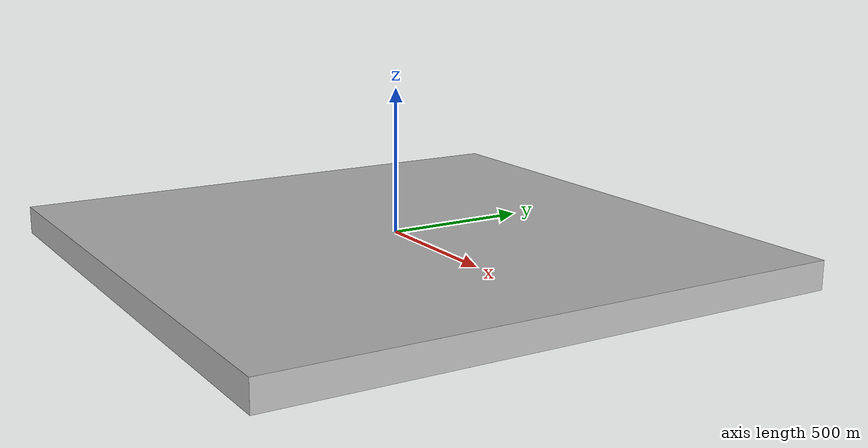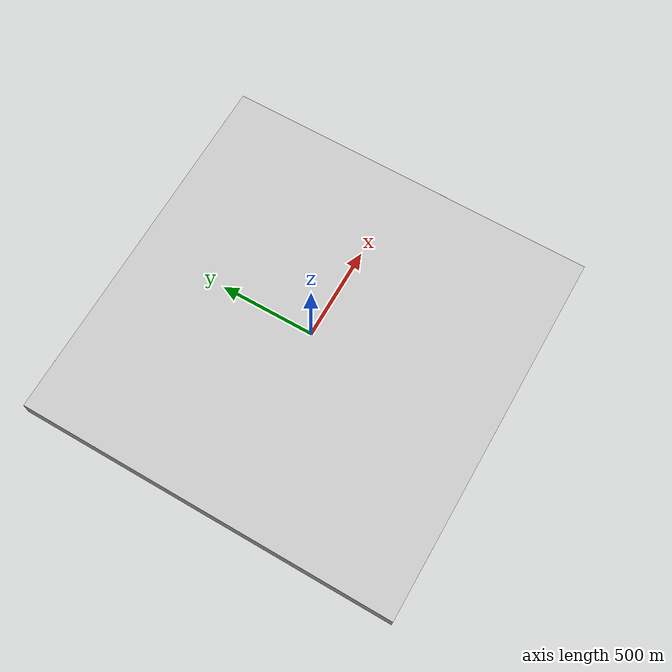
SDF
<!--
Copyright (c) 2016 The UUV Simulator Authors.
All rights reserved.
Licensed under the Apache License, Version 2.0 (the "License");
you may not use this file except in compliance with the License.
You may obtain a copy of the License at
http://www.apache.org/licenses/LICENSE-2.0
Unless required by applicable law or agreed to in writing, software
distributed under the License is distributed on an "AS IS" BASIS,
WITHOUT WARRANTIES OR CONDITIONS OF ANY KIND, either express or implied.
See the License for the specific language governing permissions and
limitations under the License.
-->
<?xml version="1.0"?>

<!-- sgillen@20171202-14:12 stole most of this from the uuv_sim guys -->

<sdf version="1.5">
  <world name="empty_underwater">
    <physics name="default_physics" default="true" type="ode">
      <max_step_size>0.002</max_step_size>
      <real_time_factor>1</real_time_factor>
      <real_time_update_rate>500</real_time_update_rate>
      <ode>
        <solver>
          <type>quick</type>
          <iters>50</iters>
          <sor>0.5</sor>
        </solver>
      </ode>
    </physics>
    <scene>
      <ambient>0.01 0.01 0.01 1.0</ambient>
      <sky>
        <clouds>
          <speed>12</speed>
        </clouds>
      </sky>
      <shadows>1</shadows>
      <fog>
        <color>0.1 0.2 0.3 1.0</color>
        <type>linear</type>
        <density>0.001</density>
        <start>10</start>
        <end>200</end>
      </fog>
    </scene>

    <!-- Global light source -->
    <include>
      <uri>model://sun</uri>
    </include>

    <!-- Virtual NED frame -->
    <include>
      <uri>model://ned_frame</uri>
      <pose>0 0 0 0 0 0</pose>
    </include>

    <!-- Bounding box with sea surface -->
    <include>
      <uri>model://ocean_box</uri>
      <pose>0 0 0 0 0 0</pose>
    </include>

    <plugin name="underwater_world" filename="libuuv_underwater_world_ros_plugin.so">
      <namespace>hydrodynamics</namespace>
      <constant_current>
        <topic>current_velocity</topic>
        <velocity>
          <mean>0</mean>
          <min>-5</min>
          <max>5</max>
          <mu>0.0</mu>
          <noiseAmp>0.0</noiseAmp>
        </velocity>

        <horizontal_angle>
          <mean>0</mean>
          <min>-1.5707963267948966</min>
          <max>1.5707963267948966</max>
          <mu>0.0</mu>
          <noiseAmp>0.0</noiseAmp>
        </horizontal_angle>

        <vertical_angle>
          <mean>0</mean>
          <min>-1.5707963267948966</min>
          <max>1.5707963267948966</max>
          <mu>0.0</mu>
          <noiseAmp>0.0</noiseAmp>
        </vertical_angle>
      </constant_current>
    </plugin>

    <!-- sgillen@20171302-14:13 this is our mesh(es) -->

    <model name="my_mesh">
      <pose>0 0 0  0 0 0</pose>
      <static>true</static>
      <link name="body">
        <visual name="visual">
          <pose>1 1 -1 -1.57 0 0</pose>
          <geometry>
            <mesh>
              <uri>model://buoy.dae</uri>
              <scale>0.05 0.05 0.05</scale>
            </mesh>
          </geometry>
        </visual>
      </link>
    </model>

  </world>
</sdf>

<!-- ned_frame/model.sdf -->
<sdf version='1.5'>
    <model name="world_ned">

      <pose>0 0 0 0 0 0</pose>
      <static>true</static>

      <link name="world_ned">
        <gravity>0</gravity>
        <pose>0 0 0 3.14159265359 0 1.5707963267948966</pose>

        <visual name="N_visual">
          <pose>0.25 0 0 1.5707963267948966 0 1.5707963267948966</pose>
          <geometry>
            <cylinder>
              <radius>0.01</radius>
              <length>0.5</length>
            </cylinder>
          </geometry>
          <material>
            <script>
              <uri>file://media/materials/scripts/gazebo.material</uri>
              <name>Gazebo/Red</name>
            </script>
          </material>
        </visual>

        <visual name="E_visual">
          <pose>0 0.25 0 1.5707963267948966 0 0</pose>
          <geometry>
            <cylinder>
              <radius>0.01</radius>
              <length>0.5</length>
            </cylinder>
          </geometry>
          <material>
            <script>
              <uri>file://media/materials/scripts/gazebo.material</uri>
              <name>Gazebo/Green</name>
            </script>
          </material>
        </visual>

        <visual name="D_visual">
          <pose>0 0 0.25 0 0 0</pose>
          <geometry>
            <cylinder>
              <radius>0.01</radius>
              <length>0.5</length>
            </cylinder>
          </geometry>
          <material>
            <script>
              <uri>file://media/materials/scripts/gazebo.material</uri>
              <name>Gazebo/Blue</name>
            </script>
          </material>
        </visual>
      </link>
    </model>
</sdf>

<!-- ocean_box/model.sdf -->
<sdf version="1.5">
  <model name="ocean_box">
    <static>true</static>
    <link name="link">
      <visual name="ground">
        <cast_shadows>false</cast_shadows>
        <pose>0 0 -100 0 0 0</pose>
        <geometry>
          <box>
            <size>2000 2000 .1</size>
          </box>
        </geometry>
        <material>
          <script>
            <uri>file://Media/materials/scripts/sand.material</uri>
            <name>UUVSimulator/SandAndStones</name>
          </script>
        </material>
      </visual>

      <collision name="ground">
        <pose>0 0 -100 0 0 0</pose>
        <geometry>
          <box>
            <size>2000 2000 .1</size>
          </box>
        </geometry>
      </collision>

      <visual name="surface">
        <cast_shadows>false</cast_shadows>
        <pose>0 0 0 0 0 0</pose>
        <geometry>
          <box>
            <size>2000 2000 .1</size>
          </box>
        </geometry>
        <material>
          <script>
            <uri>file://Media/materials/scripts/water.material</uri>
            <name>UUVSimulator/StaticDeepWater</name>
          </script>
        </material>
      </visual>

      <visual name="north">
        <cast_shadows>false</cast_shadows>
        <pose>1000 0 -50 0 0 0</pose>
        <geometry>
          <box>
            <size>.1 2000 100</size>
          </box>
        </geometry>
        <material>
          <script>
            <uri>file://Media/materials/scripts/water.material</uri>
            <name>UUVSimulator/SeaWall</name>
          </script>
        </material>
      </visual>

      <visual name="south">
        <cast_shadows>false</cast_shadows>
        <pose>-1000 0 -50 0 0 0</pose>
        <geometry>
          <box>
            <size>.1 2000 100</size>
          </box>
        </geometry>
        <material>
          <script>
            <uri>file://Media/materials/scripts/water.material</uri>
            <name>UUVSimulator/SeaWall</name>
          </script>
        </material>
      </visual>

      <visual name="east">
        <cast_shadows>false</cast_shadows>
        <pose>0 -1000 -50 0 0 0</pose>
        <geometry>
          <box>
            <size>2000 .1 100</size>
          </box>
        </geometry>
        <material>
          <script>
            <uri>file://Media/materials/scripts/water.material</uri>
            <name>UUVSimulator/SeaWall</name>
          </script>
        </material>
      </visual>

      <visual name="west">
        <cast_shadows>false</cast_shadows>
        <pose>0 1000 -50 0 0 0</pose>
        <geometry>
          <box>
            <size>2000 .1 100</size>
          </box>
        </geometry>
        <material>
          <script>
            <uri>file://Media/materials/scripts/water.material</uri>
            <name>UUVSimulator/SeaWall</name>
          </script>
        </material>
      </visual>
    </link>
  </model>
</sdf>
